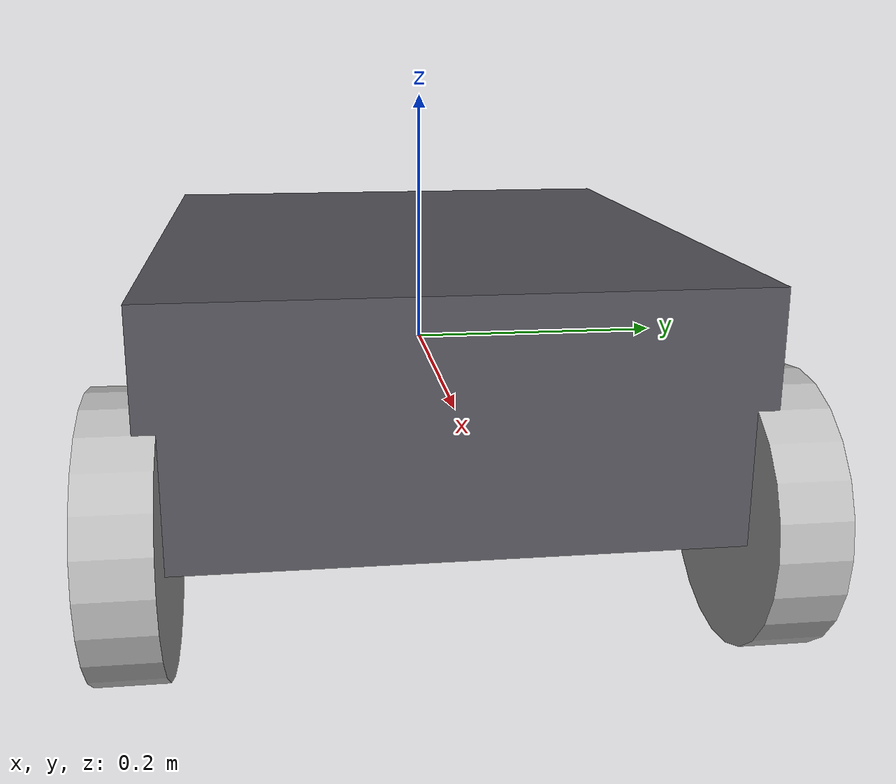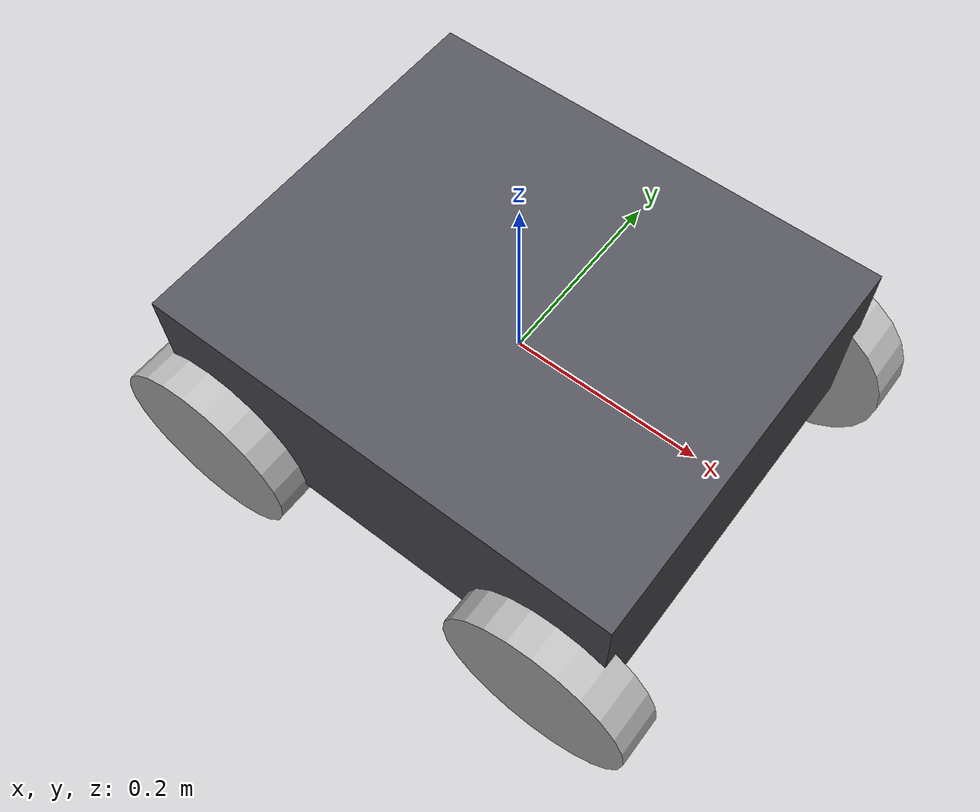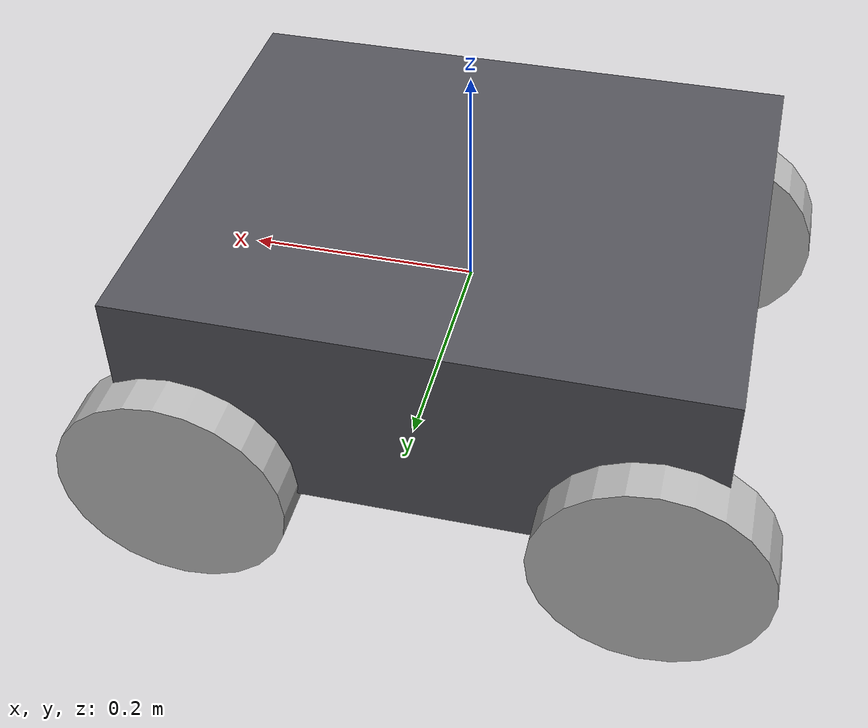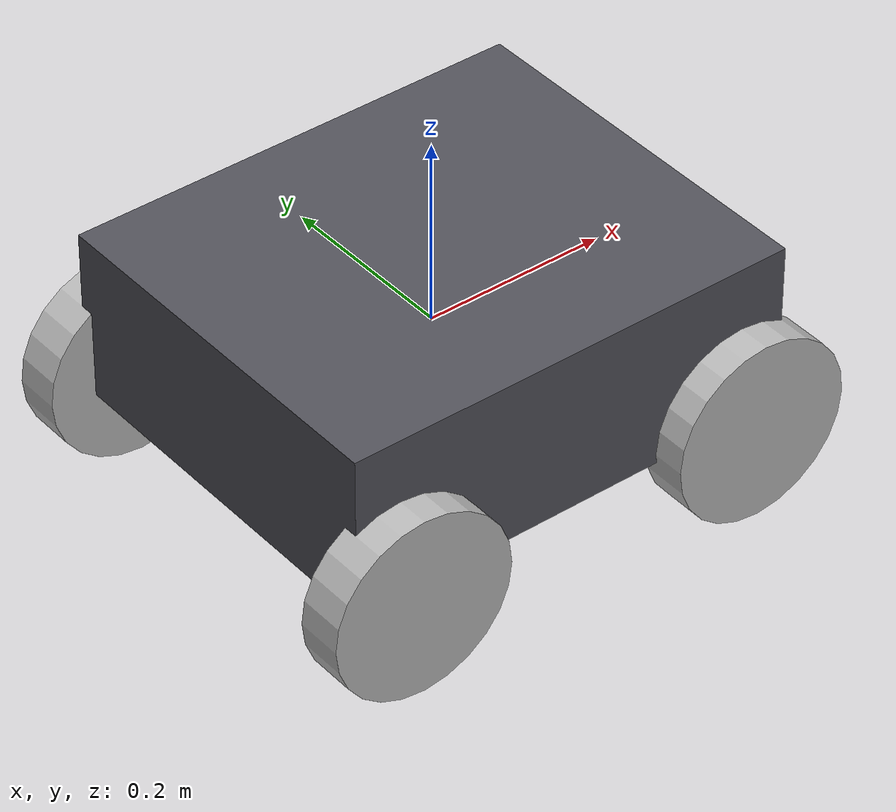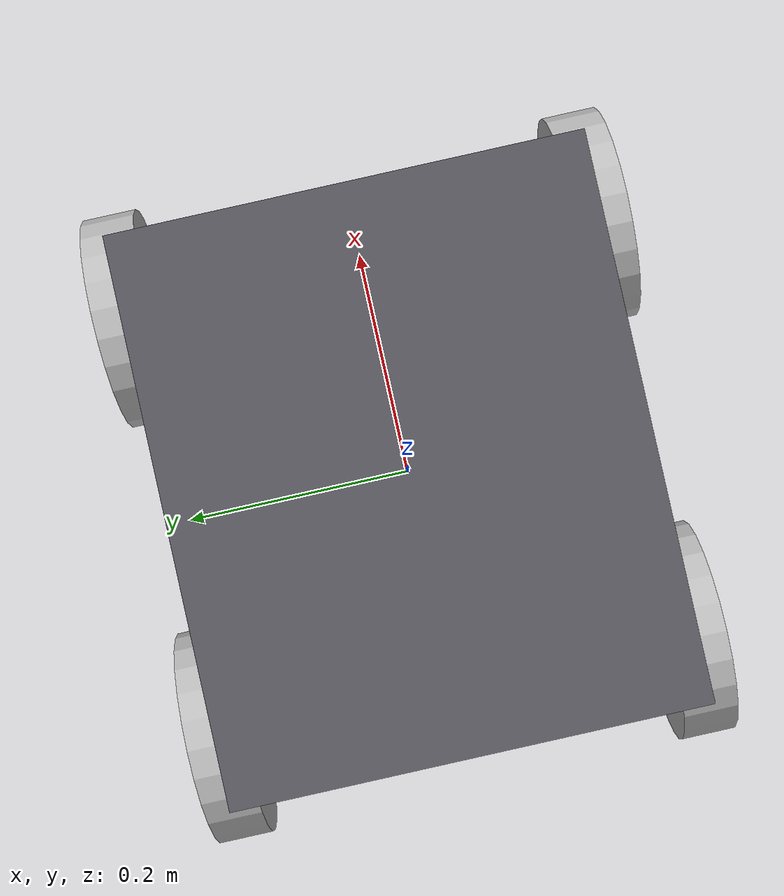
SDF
<?xml version="1.0"?>
<!--
  PLACEHOLDER rover. Four-wheel skid-steer, gz-sim diff-drive plugin,
  one gpu_lidar, one imu. Replace with the official Clearpath Jackal
  description once published for ROS 2 Jazzy.
-->
<sdf version="1.10">
  <model name="jackal_placeholder" canonical_link="base_link">

    <link name="base_link">
      <inertial>
        <mass>17.0</mass>
        <inertia>
          <ixx>0.5</ixx><iyy>1.0</iyy><izz>1.2</izz>
          <ixy>0</ixy><ixz>0</ixz><iyz>0</iyz>
        </inertia>
      </inertial>
      <visual name="chassis_vis">
        <geometry><box><size>0.50 0.42 0.18</size></box></geometry>
        <material>
          <ambient>0.20 0.20 0.22 1</ambient>
          <diffuse>0.32 0.32 0.35 1</diffuse>
        </material>
      </visual>
      <collision name="chassis_col">
        <geometry><box><size>0.50 0.42 0.18</size></box></geometry>
      </collision>

      <sensor name="lidar_link" type="gpu_lidar">
        <pose>0 0 0.18 0 0 0</pose>
        <topic>/lunar_jackal/scan</topic>
        <update_rate>10</update_rate>
        <ray>
          <scan>
            <horizontal>
              <samples>360</samples>
              <resolution>1</resolution>
              <min_angle>-3.14159</min_angle>
              <max_angle> 3.14159</max_angle>
            </horizontal>
            <vertical>
              <samples>16</samples>
              <resolution>1</resolution>
              <min_angle>-0.2618</min_angle>
              <max_angle> 0.2618</max_angle>
            </vertical>
          </scan>
          <range>
            <min>0.20</min>
            <max>80.0</max>
            <resolution>0.02</resolution>
          </range>
        </ray>
        <always_on>1</always_on>
        <visualize>false</visualize>
      </sensor>

      <!-- IMU — 100 Hz, frame imu_link -->
      <sensor name="imu_link" type="imu">
        <pose>0 0 0.10 0 0 0</pose>
        <topic>/lunar_jackal/imu</topic>
        <update_rate>100</update_rate>
        <always_on>1</always_on>
      </sensor>

      <sensor name="chase_camera" type="camera">
        <pose>-6.0 0.0 3.0 0 0.40 0</pose>
        <topic>/lunar_jackal/chase_camera/image</topic>
        <update_rate>15</update_rate>
        <camera>
          <horizontal_fov>1.396</horizontal_fov>
          <image>
            <width>640</width>
            <height>360</height>
            <format>R8G8B8</format>
          </image>
          <clip>
            <near>0.1</near>
            <far>500.0</far>
          </clip>
        </camera>
        <always_on>1</always_on>
        <visualize>false</visualize>
      </sensor>
    </link>

    <link name="wheel_fl">
      <pose>0.20  0.22 -0.08 0 0 0</pose>
      <inertial><mass>0.5</mass>
        <inertia>
          <ixx>0.003</ixx><iyy>0.005</iyy><izz>0.003</izz>
          <ixy>0</ixy><ixz>0</ixz><iyz>0</iyz>
        </inertia>
      </inertial>
      <visual name="v"><pose>0 0 0 1.5708 0 0</pose><geometry><cylinder>
        <radius>0.10</radius><length>0.05</length>
      </cylinder></geometry></visual>
      <collision name="c"><pose>0 0 0 1.5708 0 0</pose><geometry><cylinder>
        <radius>0.10</radius><length>0.05</length>
      </cylinder></geometry></collision>
    </link>
    <link name="wheel_fr">
      <pose>0.20 -0.22 -0.08 0 0 0</pose>
      <inertial><mass>0.5</mass>
        <inertia>
          <ixx>0.003</ixx><iyy>0.005</iyy><izz>0.003</izz>
          <ixy>0</ixy><ixz>0</ixz><iyz>0</iyz>
        </inertia>
      </inertial>
      <visual name="v"><pose>0 0 0 1.5708 0 0</pose><geometry><cylinder>
        <radius>0.10</radius><length>0.05</length>
      </cylinder></geometry></visual>
      <collision name="c"><pose>0 0 0 1.5708 0 0</pose><geometry><cylinder>
        <radius>0.10</radius><length>0.05</length>
      </cylinder></geometry></collision>
    </link>
    <link name="wheel_rl">
      <pose>-0.20  0.22 -0.08 0 0 0</pose>
      <inertial><mass>0.5</mass>
        <inertia>
          <ixx>0.003</ixx><iyy>0.005</iyy><izz>0.003</izz>
          <ixy>0</ixy><ixz>0</ixz><iyz>0</iyz>
        </inertia>
      </inertial>
      <visual name="v"><pose>0 0 0 1.5708 0 0</pose><geometry><cylinder>
        <radius>0.10</radius><length>0.05</length>
      </cylinder></geometry></visual>
      <collision name="c"><pose>0 0 0 1.5708 0 0</pose><geometry><cylinder>
        <radius>0.10</radius><length>0.05</length>
      </cylinder></geometry></collision>
    </link>
    <link name="wheel_rr">
      <pose>-0.20 -0.22 -0.08 0 0 0</pose>
      <inertial><mass>0.5</mass>
        <inertia>
          <ixx>0.003</ixx><iyy>0.005</iyy><izz>0.003</izz>
          <ixy>0</ixy><ixz>0</ixz><iyz>0</iyz>
        </inertia>
      </inertial>
      <visual name="v"><pose>0 0 0 1.5708 0 0</pose><geometry><cylinder>
        <radius>0.10</radius><length>0.05</length>
      </cylinder></geometry></visual>
      <collision name="c"><pose>0 0 0 1.5708 0 0</pose><geometry><cylinder>
        <radius>0.10</radius><length>0.05</length>
      </cylinder></geometry></collision>
    </link>

    <joint name="j_fl" type="revolute">
      <parent>base_link</parent><child>wheel_fl</child>
      <axis><xyz>0 1 0</xyz></axis>
    </joint>
    <joint name="j_fr" type="revolute">
      <parent>base_link</parent><child>wheel_fr</child>
      <axis><xyz>0 1 0</xyz></axis>
    </joint>
    <joint name="j_rl" type="revolute">
      <parent>base_link</parent><child>wheel_rl</child>
      <axis><xyz>0 1 0</xyz></axis>
    </joint>
    <joint name="j_rr" type="revolute">
      <parent>base_link</parent><child>wheel_rr</child>
      <axis><xyz>0 1 0</xyz></axis>
    </joint>

    <!-- Stock Gazebo diff-drive plugin — drives left/right wheel pairs. -->
    <plugin filename="gz-sim-diff-drive-system"
            name="gz::sim::systems::DiffDrive">
      <left_joint>j_fl</left_joint>
      <left_joint>j_rl</left_joint>
      <right_joint>j_fr</right_joint>
      <right_joint>j_rr</right_joint>
      <wheel_separation>0.44</wheel_separation>
      <wheel_radius>0.10</wheel_radius>
      <topic>/lunar_jackal/cmd_vel</topic>
      <odom_topic>/lunar_jackal/odom</odom_topic>
      <tf_topic>/tf</tf_topic>
      <frame_id>odom</frame_id>
      <child_frame_id>base_link</child_frame_id>
      <odom_publish_frequency>20</odom_publish_frequency>
    </plugin>
  </model>
</sdf>
